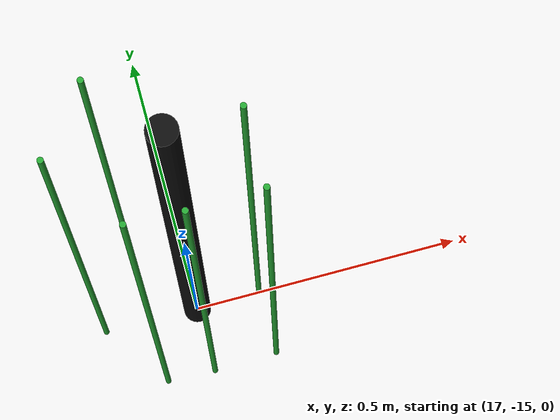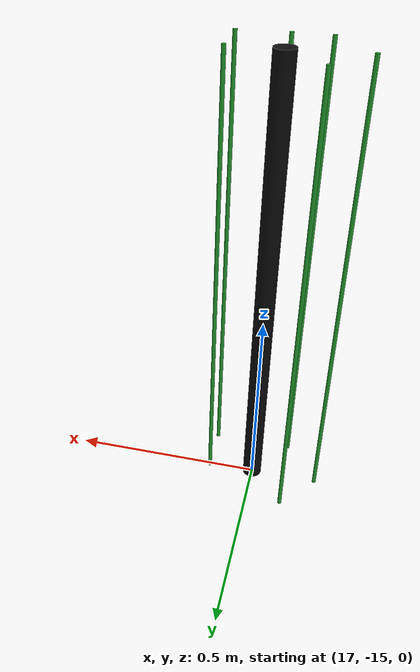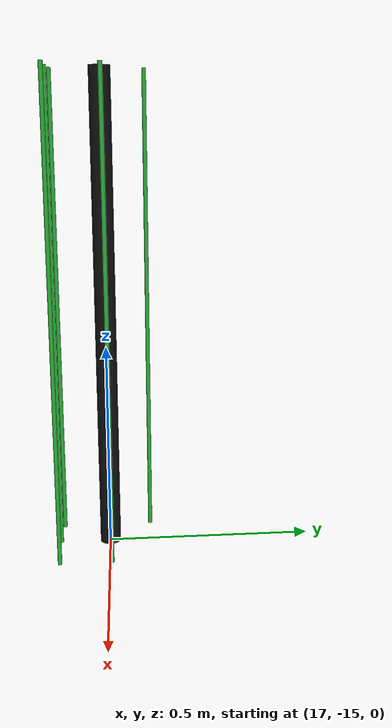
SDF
<sdf version="1.6">
 <world name="default">
  <model name="pole_28">
   <static>1</static>
   <pose>17 -15 0.575 0 -0 0</pose>
   <link name="link">
    <collision name="collision">
     <geometry><cylinder><length>1.15</length><radius>0.025</radius></cylinder></geometry>
    </collision>
    <visual name="visual">
     <geometry><cylinder><length>1.15</length><radius>0.025</radius></cylinder></geometry>
     <material>
      <script><uri>file://media/materials/scripts/gazebo.material</uri><name>Gazebo/Chrome</name></script>
      <shader type="vertex"><normal_map>__default__</normal_map></shader>
      <emissive>0.1 0.1 0.1 1</emissive>
      <specular>0.01 0.01 0.01 1</specular>
      <ambient>0.5 0.5 0.5 1</ambient>
      <diffuse>0.05 0.05 0.05 1</diffuse>
     </material>
    </visual>
   </link>
  </model>
  <model name="pole_27_clone_clone_183">
   <link name="link">
    <inertial>
     <mass>1</mass>
     <inertia><ixx>1</ixx><ixy>0</ixy><ixz>0</ixz><iyy>1</iyy><iyz>0</iyz><izz>1</izz></inertia>
    </inertial>
    <visual name="visual">
     <geometry><cylinder><length>1.15</length><radius>0.005</radius></cylinder></geometry>
     <material>
      <script><uri>file://media/materials/scripts/gazebo.material</uri><name>Gazebo/Green</name></script>
      <shader type="vertex"><normal_map>__default__</normal_map></shader>
      <emissive>0 0.1 0 1</emissive>
      <specular>0 0.01 0 1</specular>
      <ambient>0 0.5 0 1</ambient>
      <diffuse>0 0.05 0 1</diffuse>
     </material>
    </visual>
    <collision name="collision">
     <geometry><cylinder><radius>0.005</radius><length>1.15</length></cylinder></geometry>
     <surface>
      <friction>
       <ode><mu>1</mu><mu2>1</mu2><fdir1>0 0 0</fdir1><slip1>0</slip1><slip2>0</slip2></ode>
       <torsional>
        <coefficient>1</coefficient>
        <patch_radius>0</patch_radius>
        <surface_radius>0</surface_radius>
        <use_patch_radius>1</use_patch_radius>
        <ode><slip>0</slip></ode>
       </torsional>
      </friction>
      <bounce><restitution_coefficient>0</restitution_coefficient><threshold>1e+06</threshold></bounce>
      <contact>
       <collide_without_contact>0</collide_without_contact>
       <collide_without_contact_bitmask>1</collide_without_contact_bitmask>
       <collide_bitmask>1</collide_bitmask>
       <ode>
        <soft_cfm>0</soft_cfm>
        <soft_erp>0.2</soft_erp>
        <kp>1e+13</kp>
        <kd>1</kd>
        <max_vel>0.01</max_vel>
        <min_depth>0</min_depth>
       </ode>
       <bullet>
        <split_impulse>1</split_impulse>
        <split_impulse_penetration_threshold>-0.01</split_impulse_penetration_threshold>
        <soft_cfm>0</soft_cfm>
        <soft_erp>0.2</soft_erp>
        <kp>1e+13</kp>
        <kd>1</kd>
       </bullet>
      </contact>
     </surface>
    </collision>
   </link>
   <static>1</static>
   <pose>16.8245 -14.998 0.575 0 -0 0</pose>
  </model>
  <model name="pole_27_clone_clone_184">
   <link name="link">
    <inertial>
     <mass>1</mass>
     <inertia><ixx>1</ixx><ixy>0</ixy><ixz>0</ixz><iyy>1</iyy><iyz>0</iyz><izz>1</izz></inertia>
    </inertial>
    <visual name="visual">
     <geometry><cylinder><length>1.15</length><radius>0.005</radius></cylinder></geometry>
     <material>
      <script><uri>file://media/materials/scripts/gazebo.material</uri><name>Gazebo/Green</name></script>
      <shader type="vertex"><normal_map>__default__</normal_map></shader>
      <emissive>0 0.1 0 1</emissive>
      <specular>0 0.01 0 1</specular>
      <ambient>0 0.5 0 1</ambient>
      <diffuse>0 0.05 0 1</diffuse>
     </material>
    </visual>
    <collision name="collision">
     <geometry><cylinder><radius>0.005</radius><length>1.15</length></cylinder></geometry>
     <surface>
      <friction>
       <ode><mu>1</mu><mu2>1</mu2><fdir1>0 0 0</fdir1><slip1>0</slip1><slip2>0</slip2></ode>
       <torsional>
        <coefficient>1</coefficient>
        <patch_radius>0</patch_radius>
        <surface_radius>0</surface_radius>
        <use_patch_radius>1</use_patch_radius>
        <ode><slip>0</slip></ode>
       </torsional>
      </friction>
      <bounce><restitution_coefficient>0</restitution_coefficient><threshold>1e+06</threshold></bounce>
      <contact>
       <collide_without_contact>0</collide_without_contact>
       <collide_without_contact_bitmask>1</collide_without_contact_bitmask>
       <collide_bitmask>1</collide_bitmask>
       <ode>
        <soft_cfm>0</soft_cfm>
        <soft_erp>0.2</soft_erp>
        <kp>1e+13</kp>
        <kd>1</kd>
        <max_vel>0.01</max_vel>
        <min_depth>0</min_depth>
       </ode>
       <bullet>
        <split_impulse>1</split_impulse>
        <split_impulse_penetration_threshold>-0.01</split_impulse_penetration_threshold>
        <soft_cfm>0</soft_cfm>
        <soft_erp>0.2</soft_erp>
        <kp>1e+13</kp>
        <kd>1</kd>
       </bullet>
      </contact>
     </surface>
    </collision>
   </link>
   <static>1</static>
   <pose>17.1205 -14.9953 0.575 0 -0 0</pose>
  </model>
  <model name="pole_27_clone_clone_186">
   <link name="link">
    <inertial>
     <mass>1</mass>
     <inertia><ixx>1</ixx><ixy>0</ixy><ixz>0</ixz><iyy>1</iyy><iyz>0</iyz><izz>1</izz></inertia>
    </inertial>
    <visual name="visual">
     <geometry><cylinder><length>1.15</length><radius>0.005</radius></cylinder></geometry>
     <material>
      <script><uri>file://media/materials/scripts/gazebo.material</uri><name>Gazebo/Green</name></script>
      <shader type="vertex"><normal_map>__default__</normal_map></shader>
      <emissive>0 0.1 0 1</emissive>
      <specular>0 0.01 0 1</specular>
      <ambient>0 0.5 0 1</ambient>
      <diffuse>0 0.05 0 1</diffuse>
     </material>
    </visual>
    <collision name="collision">
     <geometry><cylinder><radius>0.005</radius><length>1.15</length></cylinder></geometry>
     <surface>
      <friction>
       <ode><mu>1</mu><mu2>1</mu2><fdir1>0 0 0</fdir1><slip1>0</slip1><slip2>0</slip2></ode>
       <torsional>
        <coefficient>1</coefficient>
        <patch_radius>0</patch_radius>
        <surface_radius>0</surface_radius>
        <use_patch_radius>1</use_patch_radius>
        <ode><slip>0</slip></ode>
       </torsional>
      </friction>
      <bounce><restitution_coefficient>0</restitution_coefficient><threshold>1e+06</threshold></bounce>
      <contact>
       <collide_without_contact>0</collide_without_contact>
       <collide_without_contact_bitmask>1</collide_without_contact_bitmask>
       <collide_bitmask>1</collide_bitmask>
       <ode>
        <soft_cfm>0</soft_cfm>
        <soft_erp>0.2</soft_erp>
        <kp>1e+13</kp>
        <kd>1</kd>
        <max_vel>0.01</max_vel>
        <min_depth>0</min_depth>
       </ode>
       <bullet>
        <split_impulse>1</split_impulse>
        <split_impulse_penetration_threshold>-0.01</split_impulse_penetration_threshold>
        <soft_cfm>0</soft_cfm>
        <soft_erp>0.2</soft_erp>
        <kp>1e+13</kp>
        <kd>1</kd>
       </bullet>
      </contact>
     </surface>
    </collision>
   </link>
   <static>1</static>
   <pose>16.9071 -14.898 0.575 0 -0 0</pose>
  </model>
  <model name="pole_27_clone_clone_189">
   <link name="link">
    <inertial>
     <mass>1</mass>
     <inertia><ixx>1</ixx><ixy>0</ixy><ixz>0</ixz><iyy>1</iyy><iyz>0</iyz><izz>1</izz></inertia>
    </inertial>
    <visual name="visual">
     <geometry><cylinder><length>1.15</length><radius>0.005</radius></cylinder></geometry>
     <material>
      <script><uri>file://media/materials/scripts/gazebo.material</uri><name>Gazebo/Green</name></script>
      <shader type="vertex"><normal_map>__default__</normal_map></shader>
      <emissive>0 0.1 0 1</emissive>
      <specular>0 0.01 0 1</specular>
      <ambient>0 0.5 0 1</ambient>
      <diffuse>0 0.05 0 1</diffuse>
     </material>
    </visual>
    <collision name="collision">
     <geometry><cylinder><radius>0.005</radius><length>1.15</length></cylinder></geometry>
     <surface>
      <friction>
       <ode><mu>1</mu><mu2>1</mu2><fdir1>0 0 0</fdir1><slip1>0</slip1><slip2>0</slip2></ode>
       <torsional>
        <coefficient>1</coefficient>
        <patch_radius>0</patch_radius>
        <surface_radius>0</surface_radius>
        <use_patch_radius>1</use_patch_radius>
        <ode><slip>0</slip></ode>
       </torsional>
      </friction>
      <bounce><restitution_coefficient>0</restitution_coefficient><threshold>1e+06</threshold></bounce>
      <contact>
       <collide_without_contact>0</collide_without_contact>
       <collide_without_contact_bitmask>1</collide_without_contact_bitmask>
       <collide_bitmask>1</collide_bitmask>
       <ode>
        <soft_cfm>0</soft_cfm>
        <soft_erp>0.2</soft_erp>
        <kp>1e+13</kp>
        <kd>1</kd>
        <max_vel>0.01</max_vel>
        <min_depth>0</min_depth>
       </ode>
       <bullet>
        <split_impulse>1</split_impulse>
        <split_impulse_penetration_threshold>-0.01</split_impulse_penetration_threshold>
        <soft_cfm>0</soft_cfm>
        <soft_erp>0.2</soft_erp>
        <kp>1e+13</kp>
        <kd>1</kd>
       </bullet>
      </contact>
     </surface>
    </collision>
   </link>
   <static>1</static>
   <pose>17.1214 -15.1192 0.575 0 -0 0</pose>
  </model>
  <model name="pole_27_clone_clone_190">
   <link name="link">
    <inertial>
     <mass>1</mass>
     <inertia><ixx>1</ixx><ixy>0</ixy><ixz>0</ixz><iyy>1</iyy><iyz>0</iyz><izz>1</izz></inertia>
    </inertial>
    <visual name="visual">
     <geometry><cylinder><length>1.15</length><radius>0.005</radius></cylinder></geometry>
     <material>
      <script><uri>file://media/materials/scripts/gazebo.material</uri><name>Gazebo/Green</name></script>
      <shader type="vertex"><normal_map>__default__</normal_map></shader>
      <emissive>0 0.1 0 1</emissive>
      <specular>0 0.01 0 1</specular>
      <ambient>0 0.5 0 1</ambient>
      <diffuse>0 0.05 0 1</diffuse>
     </material>
    </visual>
    <collision name="collision">
     <geometry><cylinder><radius>0.005</radius><length>1.15</length></cylinder></geometry>
     <surface>
      <friction>
       <ode><mu>1</mu><mu2>1</mu2><fdir1>0 0 0</fdir1><slip1>0</slip1><slip2>0</slip2></ode>
       <torsional>
        <coefficient>1</coefficient>
        <patch_radius>0</patch_radius>
        <surface_radius>0</surface_radius>
        <use_patch_radius>1</use_patch_radius>
        <ode><slip>0</slip></ode>
       </torsional>
      </friction>
      <bounce><restitution_coefficient>0</restitution_coefficient><threshold>1e+06</threshold></bounce>
      <contact>
       <collide_without_contact>0</collide_without_contact>
       <collide_without_contact_bitmask>1</collide_without_contact_bitmask>
       <collide_bitmask>1</collide_bitmask>
       <ode>
        <soft_cfm>0</soft_cfm>
        <soft_erp>0.2</soft_erp>
        <kp>1e+13</kp>
        <kd>1</kd>
        <max_vel>0.01</max_vel>
        <min_depth>0</min_depth>
       </ode>
       <bullet>
        <split_impulse>1</split_impulse>
        <split_impulse_penetration_threshold>-0.01</split_impulse_penetration_threshold>
        <soft_cfm>0</soft_cfm>
        <soft_erp>0.2</soft_erp>
        <kp>1e+13</kp>
        <kd>1</kd>
       </bullet>
      </contact>
     </surface>
    </collision>
   </link>
   <static>1</static>
   <pose>16.9135 -15.1188 0.575 0 -0 0</pose>
  </model>
  <model name="pole_27_clone_clone_192">
   <link name="link">
    <inertial>
     <mass>1</mass>
     <inertia><ixx>1</ixx><ixy>0</ixy><ixz>0</ixz><iyy>1</iyy><iyz>0</iyz><izz>1</izz></inertia>
    </inertial>
    <visual name="visual">
     <geometry><cylinder><length>1.15</length><radius>0.005</radius></cylinder></geometry>
     <material>
      <script><uri>file://media/materials/scripts/gazebo.material</uri><name>Gazebo/Green</name></script>
      <shader type="vertex"><normal_map>__default__</normal_map></shader>
      <emissive>0 0.1 0 1</emissive>
      <specular>0 0.01 0 1</specular>
      <ambient>0 0.5 0 1</ambient>
      <diffuse>0 0.05 0 1</diffuse>
     </material>
    </visual>
    <collision name="collision">
     <geometry><cylinder><radius>0.005</radius><length>1.15</length></cylinder></geometry>
     <surface>
      <friction>
       <ode><mu>1</mu><mu2>1</mu2><fdir1>0 0 0</fdir1><slip1>0</slip1><slip2>0</slip2></ode>
       <torsional>
        <coefficient>1</coefficient>
        <patch_radius>0</patch_radius>
        <surface_radius>0</surface_radius>
        <use_patch_radius>1</use_patch_radius>
        <ode><slip>0</slip></ode>
       </torsional>
      </friction>
      <bounce><restitution_coefficient>0</restitution_coefficient><threshold>1e+06</threshold></bounce>
      <contact>
       <collide_without_contact>0</collide_without_contact>
       <collide_without_contact_bitmask>1</collide_without_contact_bitmask>
       <collide_bitmask>1</collide_bitmask>
       <ode>
        <soft_cfm>0</soft_cfm>
        <soft_erp>0.2</soft_erp>
        <kp>1e+13</kp>
        <kd>1</kd>
        <max_vel>0.01</max_vel>
        <min_depth>0</min_depth>
       </ode>
       <bullet>
        <split_impulse>1</split_impulse>
        <split_impulse_penetration_threshold>-0.01</split_impulse_penetration_threshold>
        <soft_cfm>0</soft_cfm>
        <soft_erp>0.2</soft_erp>
        <kp>1e+13</kp>
        <kd>1</kd>
       </bullet>
      </contact>
     </surface>
    </collision>
   </link>
   <static>1</static>
   <pose>17.0025 -15.1224 0.575 0 -0 0</pose>
  </model>
 </world>
</sdf>
